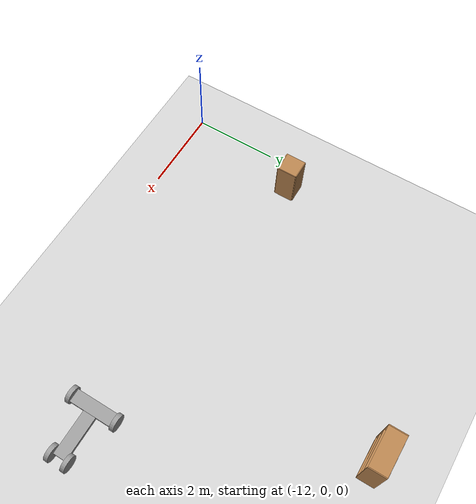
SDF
<sdf version="1.7">
 <world name="default">
  <model name="ground_plane">
   <static>1</static>
   <link name="link">
    <collision name="collision">
     <geometry><plane><normal>0 0 1</normal><size>100 100</size></plane></geometry>
     <surface>
      <contact><collide_bitmask>65535</collide_bitmask></contact>
      <friction><ode><mu>100</mu><mu2>50</mu2></ode></friction>
     </surface>
    </collision>
    <visual name="visual">
     <cast_shadows>0</cast_shadows>
     <geometry><plane><normal>0 0 1</normal><size>100 100</size></plane></geometry>
     <material>
      <script><uri>file://media/materials/scripts/gazebo.material</uri><name>Gazebo/Grey</name></script>
     </material>
    </visual>
   </link>
  </model>
  <model name="robot_clone">
   <link name="link_0">
    <inertial>
     <mass>1</mass>
     <inertia>
      <ixx>0.166667</ixx>
      <ixy>0</ixy>
      <ixz>0</ixz>
      <iyy>0.166667</iyy>
      <iyz>0</iyz>
      <izz>0.166667</izz>
     </inertia>
    </inertial>
    <pose>-0.408333 0 0 0 -0 0</pose>
    <visual name="visual">
     <geometry><box><size>0.3 1 0.1</size></box></geometry>
     <material>
      <lighting>1</lighting>
      <script><uri>file://media/materials/scripts/gazebo.material</uri><name>Gazebo/Grey</name></script>
      <shader type="pixel"><normal_map>__default__</normal_map></shader>
      <ambient>0.3 0.3 0.3 1</ambient>
      <diffuse>0.7 0.7 0.7 1</diffuse>
      <specular>0.01 0.01 0.01 1</specular>
      <emissive>0 0 0 1</emissive>
     </material>
    </visual>
    <collision name="collision">
     <geometry><box><size>0.3 1 0.1</size></box></geometry>
     <surface>
      <friction>
       <ode><mu>1</mu><mu2>1</mu2><fdir1>0 0 0</fdir1><slip1>0</slip1><slip2>0</slip2></ode>
       <torsional>
        <coefficient>1</coefficient>
        <patch_radius>0</patch_radius>
        <surface_radius>0</surface_radius>
        <use_patch_radius>1</use_patch_radius>
        <ode><slip>0</slip></ode>
       </torsional>
      </friction>
      <bounce><restitution_coefficient>0</restitution_coefficient><threshold>1e+06</threshold></bounce>
      <contact>
       <collide_without_contact>0</collide_without_contact>
       <collide_without_contact_bitmask>1</collide_without_contact_bitmask>
       <collide_bitmask>1</collide_bitmask>
       <ode>
        <soft_cfm>0</soft_cfm>
        <soft_erp>0.2</soft_erp>
        <kp>1e+13</kp>
        <kd>1</kd>
        <max_vel>0.01</max_vel>
        <min_depth>0</min_depth>
       </ode>
       <bullet>
        <split_impulse>1</split_impulse>
        <split_impulse_penetration_threshold>-0.01</split_impulse_penetration_threshold>
        <soft_cfm>0</soft_cfm>
        <soft_erp>0.2</soft_erp>
        <kp>1e+13</kp>
        <kd>1</kd>
       </bullet>
      </contact>
     </surface>
    </collision>
   </link>
   <link name="link_1">
    <inertial>
     <mass>1</mass>
     <inertia><ixx>0.145833</ixx><ixy>0</ixy><ixz>0</ixz><iyy>0.145833</iyy><iyz>0</iyz><izz>0.125</izz></inertia>
    </inertial>
    <pose>-0.408333 -0.550019 0 1.5707 -0 0</pose>
    <visual name="visual">
     <geometry><cylinder><radius>0.2</radius><length>0.1</length></cylinder></geometry>
     <material>
      <lighting>1</lighting>
      <script><uri>file://media/materials/scripts/gazebo.material</uri><name>Gazebo/Grey</name></script>
      <shader type="pixel"><normal_map>__default__</normal_map></shader>
      <ambient>0.3 0.3 0.3 1</ambient>
      <diffuse>0.7 0.7 0.7 1</diffuse>
      <specular>0.01 0.01 0.01 1</specular>
      <emissive>0 0 0 1</emissive>
     </material>
    </visual>
    <collision name="collision">
     <geometry><cylinder><radius>0.2</radius><length>0.1</length></cylinder></geometry>
     <surface>
      <friction>
       <ode><mu>1</mu><mu2>1</mu2><fdir1>0 0 0</fdir1><slip1>0</slip1><slip2>0</slip2></ode>
       <torsional>
        <coefficient>1</coefficient>
        <patch_radius>0</patch_radius>
        <surface_radius>0</surface_radius>
        <use_patch_radius>1</use_patch_radius>
        <ode><slip>0</slip></ode>
       </torsional>
      </friction>
      <bounce><restitution_coefficient>0</restitution_coefficient><threshold>1e+06</threshold></bounce>
      <contact>
       <collide_without_contact>0</collide_without_contact>
       <collide_without_contact_bitmask>1</collide_without_contact_bitmask>
       <collide_bitmask>1</collide_bitmask>
       <ode>
        <soft_cfm>0</soft_cfm>
        <soft_erp>0.2</soft_erp>
        <kp>1e+13</kp>
        <kd>1</kd>
        <max_vel>0.01</max_vel>
        <min_depth>0</min_depth>
       </ode>
       <bullet>
        <split_impulse>1</split_impulse>
        <split_impulse_penetration_threshold>-0.01</split_impulse_penetration_threshold>
        <soft_cfm>0</soft_cfm>
        <soft_erp>0.2</soft_erp>
        <kp>1e+13</kp>
        <kd>1</kd>
       </bullet>
      </contact>
     </surface>
    </collision>
   </link>
   <link name="link_1_clone">
    <inertial>
     <mass>1</mass>
     <inertia><ixx>0.145833</ixx><ixy>0</ixy><ixz>0</ixz><iyy>0.145833</iyy><iyz>0</iyz><izz>0.125</izz></inertia>
    </inertial>
    <pose>-0.408333 0.550019 0 1.5707 -0 0</pose>
    <visual name="visual">
     <geometry><cylinder><radius>0.2</radius><length>0.1</length></cylinder></geometry>
     <material>
      <lighting>1</lighting>
      <script><uri>file://media/materials/scripts/gazebo.material</uri><name>Gazebo/Grey</name></script>
      <shader type="pixel"><normal_map>__default__</normal_map></shader>
      <ambient>0.3 0.3 0.3 1</ambient>
      <diffuse>0.7 0.7 0.7 1</diffuse>
      <specular>0.01 0.01 0.01 1</specular>
      <emissive>0 0 0 1</emissive>
     </material>
    </visual>
    <collision name="collision">
     <geometry><cylinder><radius>0.2</radius><length>0.1</length></cylinder></geometry>
     <surface>
      <friction>
       <ode><mu>1</mu><mu2>1</mu2><fdir1>0 0 0</fdir1><slip1>0</slip1><slip2>0</slip2></ode>
       <torsional>
        <coefficient>1</coefficient>
        <patch_radius>0</patch_radius>
        <surface_radius>0</surface_radius>
        <use_patch_radius>1</use_patch_radius>
        <ode><slip>0</slip></ode>
       </torsional>
      </friction>
      <bounce><restitution_coefficient>0</restitution_coefficient><threshold>1e+06</threshold></bounce>
      <contact>
       <collide_without_contact>0</collide_without_contact>
       <collide_without_contact_bitmask>1</collide_without_contact_bitmask>
       <collide_bitmask>1</collide_bitmask>
       <ode>
        <soft_cfm>0</soft_cfm>
        <soft_erp>0.2</soft_erp>
        <kp>1e+13</kp>
        <kd>1</kd>
        <max_vel>0.01</max_vel>
        <min_depth>0</min_depth>
       </ode>
       <bullet>
        <split_impulse>1</split_impulse>
        <split_impulse_penetration_threshold>-0.01</split_impulse_penetration_threshold>
        <soft_cfm>0</soft_cfm>
        <soft_erp>0.2</soft_erp>
        <kp>1e+13</kp>
        <kd>1</kd>
       </bullet>
      </contact>
     </surface>
    </collision>
   </link>
   <link name="link_1_clone_0">
    <inertial>
     <mass>1</mass>
     <inertia><ixx>0.145833</ixx><ixy>0</ixy><ixz>0</ixz><iyy>0.145833</iyy><iyz>0</iyz><izz>0.125</izz></inertia>
    </inertial>
    <pose>0.741667 -0.200019 0 1.5707 -0 0</pose>
    <visual name="visual">
     <geometry><cylinder><radius>0.2</radius><length>0.1</length></cylinder></geometry>
     <material>
      <lighting>1</lighting>
      <script><uri>file://media/materials/scripts/gazebo.material</uri><name>Gazebo/Grey</name></script>
      <shader type="pixel"><normal_map>__default__</normal_map></shader>
      <ambient>0.3 0.3 0.3 1</ambient>
      <diffuse>0.7 0.7 0.7 1</diffuse>
      <specular>0.01 0.01 0.01 1</specular>
      <emissive>0 0 0 1</emissive>
     </material>
    </visual>
    <collision name="collision">
     <geometry><cylinder><radius>0.2</radius><length>0.1</length></cylinder></geometry>
     <surface>
      <friction>
       <ode><mu>1</mu><mu2>1</mu2><fdir1>0 0 0</fdir1><slip1>0</slip1><slip2>0</slip2></ode>
       <torsional>
        <coefficient>1</coefficient>
        <patch_radius>0</patch_radius>
        <surface_radius>0</surface_radius>
        <use_patch_radius>1</use_patch_radius>
        <ode><slip>0</slip></ode>
       </torsional>
      </friction>
      <bounce><restitution_coefficient>0</restitution_coefficient><threshold>1e+06</threshold></bounce>
      <contact>
       <collide_without_contact>0</collide_without_contact>
       <collide_without_contact_bitmask>1</collide_without_contact_bitmask>
       <collide_bitmask>1</collide_bitmask>
       <ode>
        <soft_cfm>0</soft_cfm>
        <soft_erp>0.2</soft_erp>
        <kp>1e+13</kp>
        <kd>1</kd>
        <max_vel>0.01</max_vel>
        <min_depth>0</min_depth>
       </ode>
       <bullet>
        <split_impulse>1</split_impulse>
        <split_impulse_penetration_threshold>-0.01</split_impulse_penetration_threshold>
        <soft_cfm>0</soft_cfm>
        <soft_erp>0.2</soft_erp>
        <kp>1e+13</kp>
        <kd>1</kd>
       </bullet>
      </contact>
     </surface>
    </collision>
   </link>
   <link name="link_1_clone_0_clone">
    <inertial>
     <mass>1</mass>
     <inertia><ixx>0.145833</ixx><ixy>0</ixy><ixz>0</ixz><iyy>0.145833</iyy><iyz>0</iyz><izz>0.125</izz></inertia>
    </inertial>
    <pose>0.741667 0.200019 0 1.5707 -0 0</pose>
    <visual name="visual">
     <geometry><cylinder><radius>0.2</radius><length>0.1</length></cylinder></geometry>
     <material>
      <lighting>1</lighting>
      <script><uri>file://media/materials/scripts/gazebo.material</uri><name>Gazebo/Grey</name></script>
      <shader type="pixel"><normal_map>__default__</normal_map></shader>
      <ambient>0.3 0.3 0.3 1</ambient>
      <diffuse>0.7 0.7 0.7 1</diffuse>
      <specular>0.01 0.01 0.01 1</specular>
      <emissive>0 0 0 1</emissive>
     </material>
    </visual>
    <collision name="collision">
     <geometry><cylinder><radius>0.2</radius><length>0.1</length></cylinder></geometry>
     <surface>
      <friction>
       <ode><mu>1</mu><mu2>1</mu2><fdir1>0 0 0</fdir1><slip1>0</slip1><slip2>0</slip2></ode>
       <torsional>
        <coefficient>1</coefficient>
        <patch_radius>0</patch_radius>
        <surface_radius>0</surface_radius>
        <use_patch_radius>1</use_patch_radius>
        <ode><slip>0</slip></ode>
       </torsional>
      </friction>
      <bounce><restitution_coefficient>0</restitution_coefficient><threshold>1e+06</threshold></bounce>
      <contact>
       <collide_without_contact>0</collide_without_contact>
       <collide_without_contact_bitmask>1</collide_without_contact_bitmask>
       <collide_bitmask>1</collide_bitmask>
       <ode>
        <soft_cfm>0</soft_cfm>
        <soft_erp>0.2</soft_erp>
        <kp>1e+13</kp>
        <kd>1</kd>
        <max_vel>0.01</max_vel>
        <min_depth>0</min_depth>
       </ode>
       <bullet>
        <split_impulse>1</split_impulse>
        <split_impulse_penetration_threshold>-0.01</split_impulse_penetration_threshold>
        <soft_cfm>0</soft_cfm>
        <soft_erp>0.2</soft_erp>
        <kp>1e+13</kp>
        <kd>1</kd>
       </bullet>
      </contact>
     </surface>
    </collision>
   </link>
   <link name="link_3">
    <inertial>
     <mass>1</mass>
     <inertia>
      <ixx>0.166667</ixx>
      <ixy>0</ixy>
      <ixz>0</ixz>
      <iyy>0.166667</iyy>
      <iyz>0</iyz>
      <izz>0.166667</izz>
     </inertia>
    </inertial>
    <pose>0.241667 0 0 0 -0 0</pose>
    <visual name="visual">
     <geometry><box><size>1 0.3 0.1</size></box></geometry>
     <material>
      <lighting>1</lighting>
      <script><uri>file://media/materials/scripts/gazebo.material</uri><name>Gazebo/Grey</name></script>
      <shader type="pixel"><normal_map>__default__</normal_map></shader>
      <ambient>0.3 0.3 0.3 1</ambient>
      <diffuse>0.7 0.7 0.7 1</diffuse>
      <specular>0.01 0.01 0.01 1</specular>
      <emissive>0 0 0 1</emissive>
     </material>
    </visual>
    <collision name="collision">
     <geometry><box><size>1 0.3 0.1</size></box></geometry>
     <surface>
      <friction>
       <ode><mu>1</mu><mu2>1</mu2><fdir1>0 0 0</fdir1><slip1>0</slip1><slip2>0</slip2></ode>
       <torsional>
        <coefficient>1</coefficient>
        <patch_radius>0</patch_radius>
        <surface_radius>0</surface_radius>
        <use_patch_radius>1</use_patch_radius>
        <ode><slip>0</slip></ode>
       </torsional>
      </friction>
      <bounce><restitution_coefficient>0</restitution_coefficient><threshold>1e+06</threshold></bounce>
      <contact>
       <collide_without_contact>0</collide_without_contact>
       <collide_without_contact_bitmask>1</collide_without_contact_bitmask>
       <collide_bitmask>1</collide_bitmask>
       <ode>
        <soft_cfm>0</soft_cfm>
        <soft_erp>0.2</soft_erp>
        <kp>1e+13</kp>
        <kd>1</kd>
        <max_vel>0.01</max_vel>
        <min_depth>0</min_depth>
       </ode>
       <bullet>
        <split_impulse>1</split_impulse>
        <split_impulse_penetration_threshold>-0.01</split_impulse_penetration_threshold>
        <soft_cfm>0</soft_cfm>
        <soft_erp>0.2</soft_erp>
        <kp>1e+13</kp>
        <kd>1</kd>
       </bullet>
      </contact>
     </surface>
    </collision>
   </link>
   <joint name="link_0_JOINT_0" type="revolute">
    <parent>link_0</parent>
    <child>link_1</child>
    <axis>
     <xyz>0 0 1</xyz>
     <limit>
      <lower>-1.79769e+308</lower>
      <upper>1.79769e+308</upper>
      <effort>-1</effort>
      <velocity>-1</velocity>
     </limit>
     <dynamics>
      <spring_reference>0</spring_reference>
      <spring_stiffness>0</spring_stiffness>
      <damping>0</damping>
     </dynamics>
    </axis>
    <physics>
     <ode><limit><cfm>0</cfm><erp>0.2</erp></limit><suspension><cfm>0</cfm><erp>0.2</erp></suspension></ode>
    </physics>
   </joint>
   <joint name="link_0_JOINT_1" type="revolute">
    <parent>link_0</parent>
    <child>link_1_clone</child>
    <axis>
     <xyz>0 0 1</xyz>
     <limit>
      <lower>-1.79769e+308</lower>
      <upper>1.79769e+308</upper>
      <effort>-1</effort>
      <velocity>-1</velocity>
     </limit>
     <dynamics>
      <spring_reference>0</spring_reference>
      <spring_stiffness>0</spring_stiffness>
      <damping>0</damping>
     </dynamics>
    </axis>
    <physics>
     <ode><limit><cfm>0</cfm><erp>0.2</erp></limit><suspension><cfm>0</cfm><erp>0.2</erp></suspension></ode>
    </physics>
   </joint>
   <joint name="link_0_JOINT_3" type="fixed">
    <parent>link_0</parent>
    <child>link_3</child>
    <physics>
     <ode><limit><cfm>0</cfm><erp>0.2</erp></limit><suspension><cfm>0</cfm><erp>0.2</erp></suspension></ode>
    </physics>
   </joint>
   <joint name="link_3_JOINT_5" type="revolute">
    <parent>link_3</parent>
    <child>link_1_clone_0</child>
    <axis>
     <xyz>0 0 1</xyz>
     <limit>
      <lower>-1.79769e+308</lower>
      <upper>1.79769e+308</upper>
      <effort>-1</effort>
      <velocity>-1</velocity>
     </limit>
     <dynamics>
      <spring_reference>0</spring_reference>
      <spring_stiffness>0</spring_stiffness>
      <damping>0</damping>
     </dynamics>
    </axis>
    <physics>
     <ode><limit><cfm>0</cfm><erp>0.2</erp></limit><suspension><cfm>0</cfm><erp>0.2</erp></suspension></ode>
    </physics>
   </joint>
   <joint name="link_3_JOINT_6" type="revolute">
    <parent>link_3</parent>
    <child>link_1_clone_0_clone</child>
    <axis>
     <xyz>0 0 1</xyz>
     <limit>
      <lower>-1.79769e+308</lower>
      <upper>1.79769e+308</upper>
      <effort>-1</effort>
      <velocity>-1</velocity>
     </limit>
     <dynamics>
      <spring_reference>0</spring_reference>
      <spring_stiffness>0</spring_stiffness>
      <damping>0</damping>
     </dynamics>
    </axis>
    <physics>
     <ode><limit><cfm>0</cfm><erp>0.2</erp></limit><suspension><cfm>0</cfm><erp>0.2</erp></suspension></ode>
    </physics>
   </joint>
   <static>0</static>
   <pose>-4.21356 2.07484 0.200005 0 -0 0.004135</pose>
  </model>
  <model name="bookshelf_0">
   <static>1</static>
   <link name="link">
    <inertial><mass>1</mass></inertial>
    <collision name="back">
     <pose>0 0.005 0.6 0 -0 0</pose>
     <geometry><box><size>0.9 0.01 1.2</size></box></geometry>
    </collision>
    <visual name="visual1">
     <pose>0 0.005 0.6 0 -0 0</pose>
     <geometry><box><size>0.9 0.01 1.2</size></box></geometry>
     <material>
      <script><uri>file://media/materials/scripts/gazebo.material</uri><name>Gazebo/Wood</name></script>
     </material>
    </visual>
    <collision name="left_side">
     <pose>0.45 -0.195 0.6 0 -0 0</pose>
     <geometry><box><size>0.02 0.4 1.2</size></box></geometry>
    </collision>
    <visual name="visual2">
     <pose>0.45 -0.195 0.6 0 -0 0</pose>
     <geometry><box><size>0.02 0.4 1.2</size></box></geometry>
     <material>
      <script><uri>file://media/materials/scripts/gazebo.material</uri><name>Gazebo/Wood</name></script>
     </material>
    </visual>
    <collision name="right_side">
     <pose>-0.45 -0.195 0.6 0 -0 0</pose>
     <geometry><box><size>0.02 0.4 1.2</size></box></geometry>
    </collision>
    <visual name="visual3">
     <pose>-0.45 -0.195 0.6 0 -0 0</pose>
     <geometry><box><size>0.02 0.4 1.2</size></box></geometry>
     <material>
      <script><uri>file://media/materials/scripts/gazebo.material</uri><name>Gazebo/Wood</name></script>
     </material>
    </visual>
    <collision name="bottom">
     <pose>0 -0.195 0.03 0 -0 0</pose>
     <geometry><box><size>0.88 0.4 0.06</size></box></geometry>
    </collision>
    <visual name="visual4">
     <pose>0 -0.195 0.03 0 -0 0</pose>
     <geometry><box><size>0.88 0.4 0.06</size></box></geometry>
     <material>
      <script><uri>file://media/materials/scripts/gazebo.material</uri><name>Gazebo/Wood</name></script>
     </material>
    </visual>
    <collision name="top">
     <pose>0 -0.195 1.19 0 -0 0</pose>
     <geometry><box><size>0.88 0.4 0.02</size></box></geometry>
    </collision>
    <visual name="visual5">
     <pose>0 -0.195 1.19 0 -0 0</pose>
     <geometry><box><size>0.88 0.4 0.02</size></box></geometry>
     <material>
      <script><uri>file://media/materials/scripts/gazebo.material</uri><name>Gazebo/Wood</name></script>
     </material>
    </visual>
    <collision name="low_shelf">
     <pose>0 -0.195 0.43 0 -0 0</pose>
     <geometry><box><size>0.88 0.4 0.02</size></box></geometry>
    </collision>
    <visual name="visual6">
     <pose>0 -0.195 0.43 0 -0 0</pose>
     <geometry><box><size>0.88 0.4 0.02</size></box></geometry>
     <material>
      <script><uri>file://media/materials/scripts/gazebo.material</uri><name>Gazebo/Wood</name></script>
     </material>
    </visual>
    <collision name="high_shelf">
     <pose>0 -0.195 0.8 0 -0 0</pose>
     <geometry><box><size>0.88 0.4 0.02</size></box></geometry>
    </collision>
    <visual name="visual7">
     <pose>0 -0.195 0.8 0 -0 0</pose>
     <geometry><box><size>0.88 0.4 0.02</size></box></geometry>
     <material>
      <script><uri>file://media/materials/scripts/gazebo.material</uri><name>Gazebo/Wood</name></script>
     </material>
    </visual>
   </link>
   <pose>-6.69163 7.61441 0 0 -0 0</pose>
  </model>
  <model name="cabinet">
   <static>1</static>
   <link name="cabinet_bottom_plate">
    <inertial>
     <pose>0 0 -1 0 -0 0</pose>
     <inertia><ixx>2.05</ixx><ixy>0</ixy><ixz>0</ixz><iyy>2.05</iyy><iyz>0</iyz><izz>2.05</izz></inertia>
     <mass>25</mass>
    </inertial>
    <collision name="cabinet_bottom_plate_geom">
     <pose>0 0 0.01 0 -0 0</pose>
     <geometry><box><size>0.45 0.45 0.02</size></box></geometry>
    </collision>
    <visual name="cabinet_bottom_plate_geom_visual">
     <pose>0 0 0.01 0 -0 0</pose>
     <geometry><box><size>0.45 0.45 0.02</size></box></geometry>
     <material>
      <script><uri>file://media/materials/scripts/gazebo.material</uri><name>Gazebo/Wood</name></script>
     </material>
    </visual>
    <collision name="cabinet_bottom_plate_geom_cabinet_back_plate">
     <pose>0.235 0 0.51 0 -0 0</pose>
     <geometry><box><size>0.02 0.45 1.02</size></box></geometry>
    </collision>
    <visual name="cabinet_bottom_plate_geom_cabinet_back_plate_visual">
     <pose>0.235 0 0.51 0 -0 0</pose>
     <geometry><box><size>0.02 0.45 1.02</size></box></geometry>
     <material>
      <script><uri>file://media/materials/scripts/gazebo.material</uri><name>Gazebo/Wood</name></script>
     </material>
    </visual>
    <collision name="cabinet_bottom_plate_geom_cabinet_left_plate">
     <pose>0 0.235 0.51 0 -0 0</pose>
     <geometry><box><size>0.45 0.02 1.02</size></box></geometry>
    </collision>
    <visual name="cabinet_bottom_plate_geom_cabinet_left_plate_visual">
     <pose>0 0.235 0.51 0 -0 0</pose>
     <geometry><box><size>0.45 0.02 1.02</size></box></geometry>
     <material>
      <script><uri>file://media/materials/scripts/gazebo.material</uri><name>Gazebo/Wood</name></script>
     </material>
    </visual>
    <collision name="cabinet_bottom_plate_geom_cabinet_middle_plate">
     <pose>0 0 0.51 0 -0 0</pose>
     <geometry><box><size>0.45 0.45 0.02</size></box></geometry>
    </collision>
    <visual name="cabinet_bottom_plate_geom_cabinet_middle_plate_visual">
     <pose>0 0 0.51 0 -0 0</pose>
     <geometry><box><size>0.45 0.45 0.02</size></box></geometry>
     <material>
      <script><uri>file://media/materials/scripts/gazebo.material</uri><name>Gazebo/Wood</name></script>
     </material>
    </visual>
    <collision name="cabinet_bottom_plate_geom_cabinet_right_plate">
     <pose>0 -0.235 0.51 0 -0 0</pose>
     <geometry><box><size>0.45 0.02 1.02</size></box></geometry>
    </collision>
    <visual name="cabinet_bottom_plate_geom_cabinet_right_plate_visual">
     <pose>0 -0.235 0.51 0 -0 0</pose>
     <geometry><box><size>0.45 0.02 1.02</size></box></geometry>
     <material>
      <script><uri>file://media/materials/scripts/gazebo.material</uri><name>Gazebo/Wood</name></script>
     </material>
    </visual>
    <collision name="cabinet_bottom_plate_geom_cabinet_top_plate">
     <pose>0 0 1.01 0 -0 0</pose>
     <geometry><box><size>0.45 0.45 0.02</size></box></geometry>
    </collision>
    <visual name="cabinet_bottom_plate_geom_cabinet_top_plate_visual">
     <pose>0 0 1.01 0 -0 0</pose>
     <geometry><box><size>0.45 0.45 0.02</size></box></geometry>
     <material>
      <script><uri>file://media/materials/scripts/gazebo.material</uri><name>Gazebo/Wood</name></script>
     </material>
    </visual>
   </link>
   <pose>-11.3915 2.82869 0 0 -0 0</pose>
  </model>
 </world>
</sdf>
